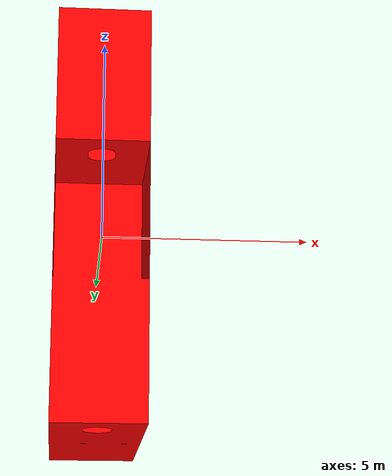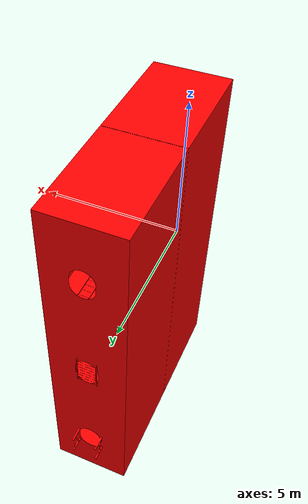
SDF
<?xml version="1.0" ?>
<sdf version="1.5">
  <model name="ship">
    <pose>0 0 0.75  0 0 0</pose>
    <static>false</static>
    <link name="link">
      <inertial>
        <mass>40.0</mass>
        <inertia>
          <ixx>1</ixx>
          <ixy>0</ixy>
          <ixz>0</ixz>
          <iyy>1</iyy>
          <iyz>0</iyz>
          <izz>1</izz>
        </inertia>
      </inertial>

      <collision name="collision">
        <geometry>
          <mesh>
            <uri>model://ship/meshes/ship.dae</uri>
            <scale>4.6 4.6 4.6</scale>
          </mesh>
        </geometry>
        <surface>
          <contact>
            <ode>
              <max_vel>0.1</max_vel>
              <min_depth>0.001</min_depth>
            </ode>
          </contact>
        </surface>
      </collision>
      <visual name="visual">
        <geometry>
          <mesh>
            <uri>model://ship/meshes/ship.dae</uri>
            <scale>4.6 4.6 4.6</scale>
          </mesh>
        </geometry>
        <material>
          <ambient>1 0 0 1</ambient>
          <diffuse>1 0 0 1</diffuse>
          <specular>0.1 0.1 0.1 1</specular>
          <emissive>0 0 0 0</emissive>
        </material>
      </visual>
    </link>
  </model>
</sdf>
